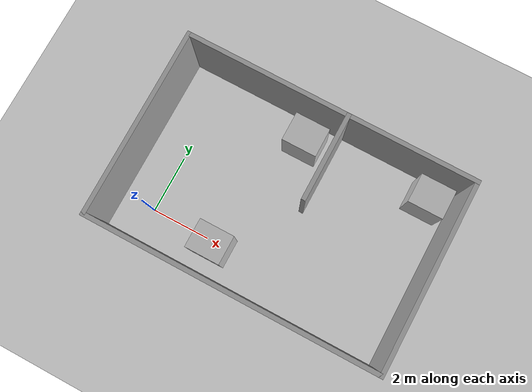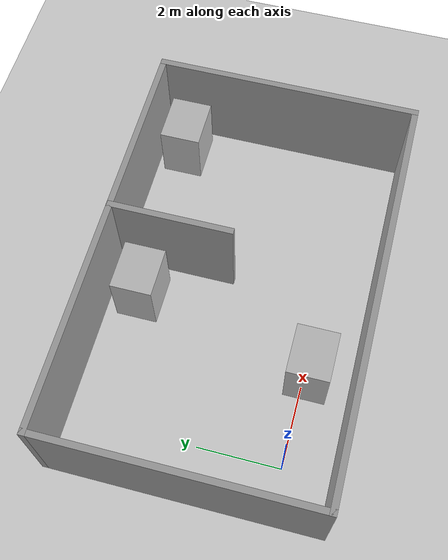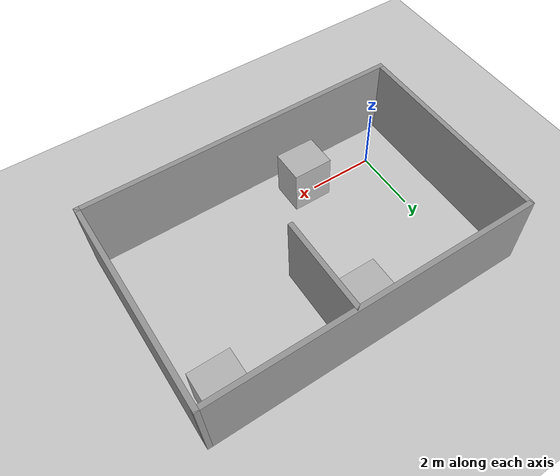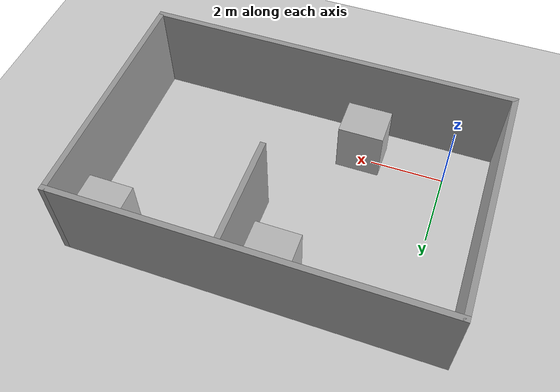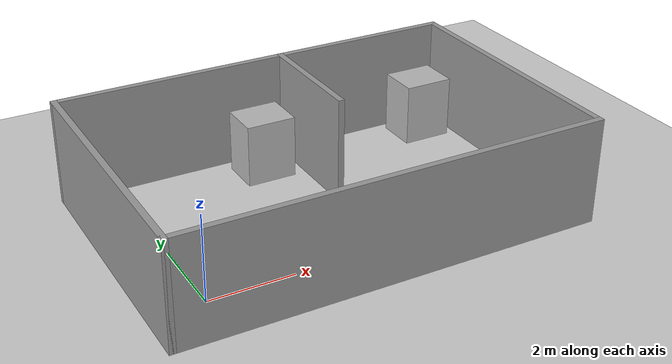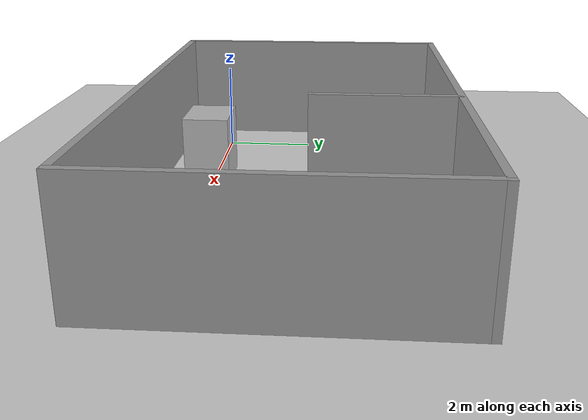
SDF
<sdf version="1.7">
 <world name="default">
  <light name="sun" type="directional">
   <pose>0 0 10 0 -0 0</pose>
   <diffuse>0.8 0.8 0.8 1</diffuse>
   <specular>0.2 0.2 0.2 1</specular>
   <attenuation>
    <range>1000</range>
    <constant>0.9</constant>
    <linear>0.01</linear>
    <quadratic>0.001</quadratic>
   </attenuation>
   <direction>-0.5 0.1 -0.9</direction>
   <spot><inner_angle>0</inner_angle><outer_angle>0</outer_angle><falloff>0</falloff></spot>
  </light>
  <model name="ground_plane">
   <static>1</static>
   <link name="link">
    <collision name="collision">
     <geometry><plane><normal>0 0 1</normal><size>100 100</size></plane></geometry>
     <surface><friction><ode><mu>100</mu><mu2>50</mu2></ode></friction></surface>
    </collision>
    <visual name="visual">
     <cast_shadows>0</cast_shadows>
     <geometry><plane><normal>0 0 1</normal><size>100 100</size></plane></geometry>
     <material>
      <script><uri>file://media/materials/scripts/gazebo.material</uri><name>Gazebo/Grey</name></script>
     </material>
    </visual>
   </link>
  </model>
  <gravity>0 0 -9.8</gravity>
  <magnetic_field>6e-06 2.3e-05 -4.2e-05</magnetic_field>
  <atmosphere type="adiabatic"/>
  <physics type="ode">
   <max_step_size>0.001</max_step_size>
   <real_time_factor>1</real_time_factor>
   <real_time_update_rate>1000</real_time_update_rate>
  </physics>
  <scene><ambient>0.4 0.4 0.4 1</ambient><background>0.7 0.7 0.7 1</background><shadows>1</shadows></scene>
  <spherical_coordinates>
   <surface_model>EARTH_WGS84</surface_model>
   <latitude_deg>0</latitude_deg>
   <longitude_deg>0</longitude_deg>
   <elevation>0</elevation>
   <heading_deg>0</heading_deg>
  </spherical_coordinates>
  <model name="room_4">
   <pose>3.71224 3.33859 0 0 -0 0</pose>
   <link name="Wall_10">
    <collision name="Wall_10_Collision">
     <geometry><box><size>10 0.15 2.5</size></box></geometry>
     <pose>0 0 1.25 0 -0 0</pose>
    </collision>
    <visual name="Wall_10_Visual">
     <pose>0 0 1.25 0 -0 0</pose>
     <geometry><box><size>10 0.15 2.5</size></box></geometry>
     <material>
      <script><uri>file://media/materials/scripts/gazebo.material</uri><name>Gazebo/Grey</name></script>
      <ambient>1 1 1 1</ambient>
     </material>
     <meta><layer>0</layer></meta>
    </visual>
    <pose>0 1.8225 0 0 -0 3.14159</pose>
   </link>
   <link name="Wall_12">
    <collision name="Wall_12_Collision">
     <geometry><box><size>3 0.15 2.5</size></box></geometry>
     <pose>0 0 1.25 0 -0 0</pose>
    </collision>
    <visual name="Wall_12_Visual">
     <pose>0 0 1.25 0 -0 0</pose>
     <geometry><box><size>3 0.15 2.5</size></box></geometry>
     <material>
      <script><uri>file://media/materials/scripts/gazebo.material</uri><name>Gazebo/Grey</name></script>
      <ambient>1 1 1 1</ambient>
     </material>
     <meta><layer>0</layer></meta>
    </visual>
    <pose>0.605 0.3875 0 0 -0 -1.5708</pose>
   </link>
   <link name="Wall_7">
    <collision name="Wall_7_Collision">
     <geometry><box><size>6.5 0.15 2.5</size></box></geometry>
     <pose>0 0 1.25 0 -0 0</pose>
    </collision>
    <visual name="Wall_7_Visual">
     <pose>0 0 1.25 0 -0 0</pose>
     <geometry><box><size>6.5 0.15 2.5</size></box></geometry>
     <material>
      <script><uri>file://media/materials/scripts/gazebo.material</uri><name>Gazebo/Grey</name></script>
      <ambient>1 1 1 1</ambient>
     </material>
     <meta><layer>0</layer></meta>
    </visual>
    <pose>-4.925 -1.3525 0 0 -0 -1.5708</pose>
   </link>
   <link name="Wall_8">
    <collision name="Wall_8_Collision">
     <geometry><box><size>10 0.15 2.5</size></box></geometry>
     <pose>0 0 1.25 0 -0 0</pose>
    </collision>
    <visual name="Wall_8_Visual">
     <pose>0 0 1.25 0 -0 0</pose>
     <geometry><box><size>10 0.15 2.5</size></box></geometry>
     <material>
      <script><uri>file://media/materials/scripts/gazebo.material</uri><name>Gazebo/Grey</name></script>
      <ambient>1 1 1 1</ambient>
     </material>
     <meta><layer>0</layer></meta>
    </visual>
    <pose>0 -4.5275 0 0 -0 0</pose>
   </link>
   <link name="Wall_9">
    <collision name="Wall_9_Collision">
     <geometry><box><size>6.5 0.15 2.5</size></box></geometry>
     <pose>0 0 1.25 0 -0 0</pose>
    </collision>
    <visual name="Wall_9_Visual">
     <pose>0 0 1.25 0 -0 0</pose>
     <geometry><box><size>6.5 0.15 2.5</size></box></geometry>
     <material>
      <script><uri>file://media/materials/scripts/gazebo.material</uri><name>Gazebo/Grey</name></script>
      <ambient>1 1 1 1</ambient>
     </material>
     <meta><layer>0</layer></meta>
    </visual>
    <pose>4.925 -1.3525 0 0 -0 1.5708</pose>
   </link>
   <static>1</static>
  </model>
  <model name="Big box">
   <pose>3.36462 4.29456 0.749714 0 -0.00047 0</pose>
   <static>0</static>
   <link name="link">
    <inertial>
     <mass>40</mass>
     <inertia><ixx>1</ixx><ixy>0</ixy><ixz>0</ixz><iyy>1</iyy><iyz>0</iyz><izz>1</izz></inertia>
    </inertial>
    <collision name="collision">
     <geometry><box><size>1.2 0.8 1.5</size></box></geometry>
     <surface><contact><ode><max_vel>0.1</max_vel><min_depth>0.001</min_depth></ode></contact></surface>
    </collision>
    <visual name="visual"><geometry><mesh><uri>model://big_box/meshes/big_box.dae</uri></mesh></geometry></visual>
   </link>
  </model>
  <model name="Big box 2">
   <pose>7.75444 4.39133 0.749785 0 -0.000353 0</pose>
   <static>0</static>
   <link name="link">
    <inertial>
     <mass>40</mass>
     <inertia><ixx>1</ixx><ixy>0</ixy><ixz>0</ixz><iyy>1</iyy><iyz>0</iyz><izz>1</izz></inertia>
    </inertial>
    <collision name="collision">
     <geometry><box><size>1.2 0.8 1.5</size></box></geometry>
     <surface><contact><ode><max_vel>0.1</max_vel><min_depth>0.001</min_depth></ode></contact></surface>
    </collision>
    <visual name="visual">
     <geometry><mesh><uri>model://big_box2/meshes/big_box.dae</uri></mesh></geometry>
    </visual>
   </link>
  </model>
  <model name="Big box_0">
   <pose>2.32557 -0.11181 0.749926 0 -0.000118 0</pose>
   <static>0</static>
   <link name="link">
    <inertial>
     <mass>40</mass>
     <inertia><ixx>1</ixx><ixy>0</ixy><ixz>0</ixz><iyy>1</iyy><iyz>0</iyz><izz>1</izz></inertia>
    </inertial>
    <collision name="collision">
     <geometry><box><size>1.2 0.8 1.5</size></box></geometry>
     <surface><contact><ode><max_vel>0.1</max_vel><min_depth>0.001</min_depth></ode></contact></surface>
    </collision>
    <visual name="visual"><geometry><mesh><uri>model://big_box/meshes/big_box.dae</uri></mesh></geometry></visual>
   </link>
  </model>
 </world>
</sdf>
